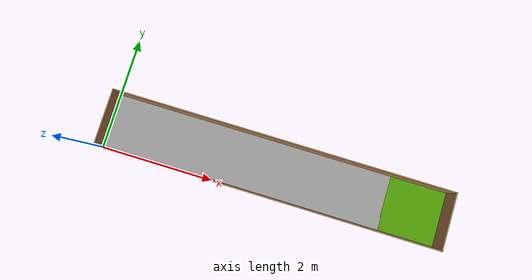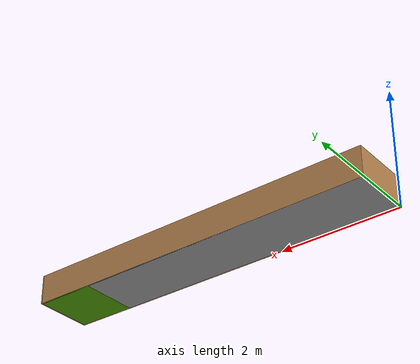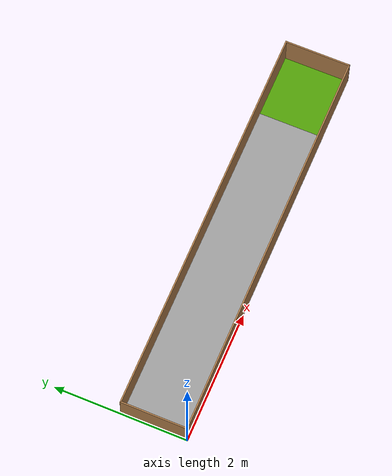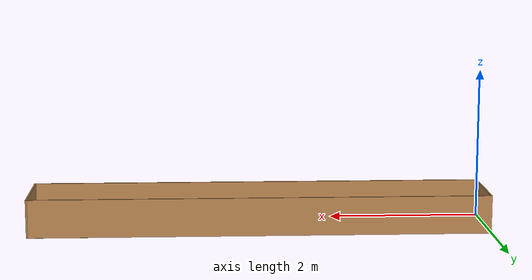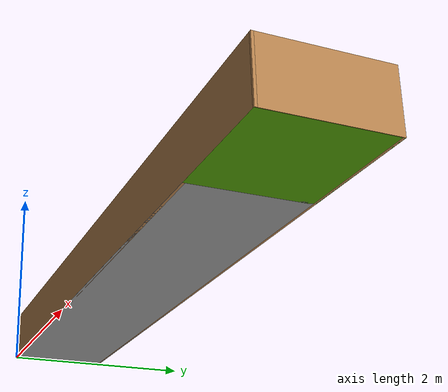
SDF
<?xml version='1.0'?>
<sdf version='1.6'>
  <model name='Motion1'>
    <pose frame=''>3.00098 0.500359 0 0 -0 0</pose>
    <link name='Wall_0'>
      <collision name='Wall_0_Collision'>
        <geometry>
          <box>
            <size>1 0.02 0.5</size>
          </box>
        </geometry>
        <pose frame=''>0 0 0.25 0 -0 0</pose>
      </collision>
      <visual name='Wall_0_Visual'>
        <pose frame=''>0 0 0.25 0 -0 0</pose>
        <geometry>
          <box>
            <size>1 0.02 0.5</size>
          </box>
        </geometry>
        <material>
          <script>
            <uri>file://media/materials/scripts/gazebo.material</uri>
            <name>Gazebo/Wood</name>
          </script>
          <ambient>1 1 1 1</ambient>
        </material>
        <meta>
          <layer>0</layer>
        </meta>
      </visual>
      <pose frame=''>-2.99098 -0.000359 0 0 -0 -1.5708</pose>
    </link>
    <link name='Wall_10'>
      <collision name='Wall_10_Collision'>
        <geometry>
          <box>
            <size>5 1 0.001</size>
          </box>
        </geometry>
        <pose frame=''>0 0 0.0005 0 -0 0</pose>
      </collision>
      <visual name='Wall_10_Visual'>
        <pose frame=''>0 0 0.0005 0 -0 0</pose>
        <geometry>
          <box>
            <size>5 1 0.001</size>
          </box>
        </geometry>
        <material>
          <script>
            <uri>file://media/materials/scripts/gazebo.material</uri>
            <name>Gazebo/Grey</name>
          </script>
          <ambient>0.827451 0.843137 0.811765 1</ambient>
        </material>
        <meta>
          <layer>0</layer>
        </meta>
      </visual>
      <pose frame=''>-0.497173 -0.001295 0 0 -0 0</pose>
    </link>
    <link name='Wall_12'>
      <collision name='Wall_12_Collision'>
        <geometry>
          <box>
            <size>1.01 1 0.001</size>
          </box>
        </geometry>
        <pose frame=''>0 0 0.0005 0 -0 0</pose>
      </collision>
      <visual name='Wall_12_Visual'>
        <pose frame=''>0 0 0.0005 0 -0 0</pose>
        <geometry>
          <box>
            <size>1.01 1 0.001</size>
          </box>
        </geometry>
        <material>
          <script>
            <uri>file://media/materials/scripts/gazebo.material</uri>
            <name>Gazebo/Grey</name>
          </script>
          <ambient>0.305882 0.603922 0.0235294 1</ambient>
        </material>
        <meta>
          <layer>0</layer>
        </meta>
      </visual>
      <pose frame=''>2.49038 0.001295 0 0 -0 0</pose>
    </link>
    <link name='Wall_2'>
      <collision name='Wall_2_Collision'>
        <geometry>
          <box>
            <size>6 0.02 0.5</size>
          </box>
        </geometry>
        <pose frame=''>0 0 0.25 0 -0 0</pose>
      </collision>
      <visual name='Wall_2_Visual'>
        <pose frame=''>0 0 0.25 0 -0 0</pose>
        <geometry>
          <box>
            <size>6 0.02 0.5</size>
          </box>
        </geometry>
        <material>
          <script>
            <uri>file://media/materials/scripts/gazebo.material</uri>
            <name>Gazebo/Wood</name>
          </script>
          <ambient>1 1 1 1</ambient>
        </material>
        <meta>
          <layer>0</layer>
        </meta>
      </visual>
      <pose frame=''>0.000982 -0.489145 0 0 -0 0</pose>
    </link>
    <link name='Wall_4'>
      <collision name='Wall_4_Collision'>
        <geometry>
          <box>
            <size>6 0.02 0.5</size>
          </box>
        </geometry>
        <pose frame=''>0 0 0.25 0 -0 0</pose>
      </collision>
      <visual name='Wall_4_Visual'>
        <pose frame=''>0 0 0.25 0 -0 0</pose>
        <geometry>
          <box>
            <size>6 0.02 0.5</size>
          </box>
        </geometry>
        <material>
          <script>
            <uri>file://media/materials/scripts/gazebo.material</uri>
            <name>Gazebo/Wood</name>
          </script>
          <ambient>1 1 1 1</ambient>
        </material>
        <meta>
          <layer>0</layer>
        </meta>
      </visual>
      <pose frame=''>-0.000878 0.490444 0 0 -0 0</pose>
    </link>
    <link name='Wall_6'>
      <collision name='Wall_6_Collision'>
        <geometry>
          <box>
            <size>1 0.02 0.5</size>
          </box>
        </geometry>
        <pose frame=''>0 0 0.25 0 -0 0</pose>
      </collision>
      <visual name='Wall_6_Visual'>
        <pose frame=''>0 0 0.25 0 -0 0</pose>
        <geometry>
          <box>
            <size>1 0.02 0.5</size>
          </box>
        </geometry>
        <material>
          <script>
            <uri>file://media/materials/scripts/gazebo.material</uri>
            <name>Gazebo/Wood</name>
          </script>
          <ambient>1 1 1 1</ambient>
        </material>
        <meta>
          <layer>0</layer>
        </meta>
      </visual>
      <pose frame=''>2.99054 0.000632 0 0 -0 -1.5708</pose>
    </link>
    <static>1</static>
  </model>
</sdf>
